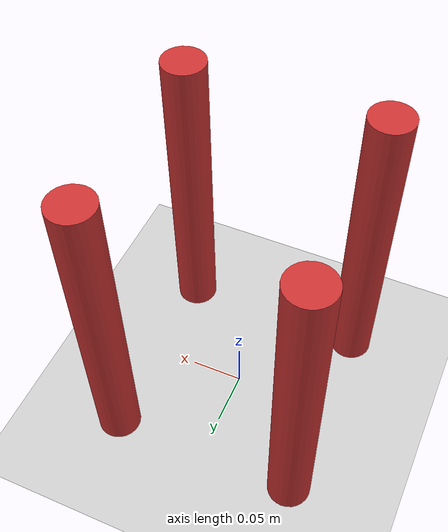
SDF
<sdf version="1.9">
 <world name="drone_world">
  <physics name="1ms" type="ignored">
   <max_step_size>0.0002</max_step_size>
   <real_time_factor>1.0</real_time_factor>
   <real_time_update_rate>5000</real_time_update_rate>
  </physics>
  <plugin filename="gz-sim-physics-system" name="gz::sim::systems::Physics"/>
  <plugin filename="gz-sim-scene-broadcaster-system" name="gz::sim::systems::SceneBroadcaster"/>
  <plugin filename="gz-sim-sensors-system" name="gz::sim::systems::Sensors"/>
  <plugin filename="gz-sim-imu-system" name="gz::sim::systems::Imu"/>
  <plugin filename="gz-sim-user-commands-system" name="gz::sim::systems::UserCommands"/>
  <light type="directional" name="sun">
   <pose>0 0 10 0 0 0</pose>
   <diffuse>0.8 0.8 0.8 1</diffuse>
   <specular>0.2 0.2 0.2 1</specular>
   <attenuation>
    <range>1000</range>
    <constant>0.9</constant>
    <linear>0.01</linear>
    <quadratic>0.001</quadratic>
   </attenuation>
   <direction>-0.5 0.1 -0.9</direction>
  </light>
  <model name="ground_plane">
   <static>true</static>
   <link name="link">
    <collision name="collision">
     <geometry><plane><normal>0 0 1</normal><size>100 100</size></plane></geometry>
    </collision>
    <visual name="visual">
     <geometry><plane><normal>0 0 1</normal><size>100 100</size></plane></geometry>
     <material>
      <ambient>0.8 0.8 0.8 1</ambient>
      <diffuse>0.8 0.8 0.8 1</diffuse>
      <specular>0.8 0.8 0.8 1</specular>
     </material>
    </visual>
   </link>
  </model>
  <model name="launchpad">
   <static>true</static>
   <link name="base_link">
    <collision name="col_fr">
     <pose>0.088388 -0.088388 0.15 0 0 0</pose>
     <geometry><cylinder><radius>0.02</radius><length>0.3</length></cylinder></geometry>
    </collision>
    <visual name="vis_fr">
     <pose>0.088388 -0.088388 0.15 0 0 0</pose>
     <geometry><cylinder><radius>0.02</radius><length>0.3</length></cylinder></geometry>
     <material><ambient>0.8 0.2 0.2 1</ambient><diffuse>0.8 0.2 0.2 1</diffuse></material>
    </visual>
    <collision name="col_fl">
     <pose>0.088388 0.088388 0.15 0 0 0</pose>
     <geometry><cylinder><radius>0.02</radius><length>0.3</length></cylinder></geometry>
    </collision>
    <visual name="vis_fl">
     <pose>0.088388 0.088388 0.15 0 0 0</pose>
     <geometry><cylinder><radius>0.02</radius><length>0.3</length></cylinder></geometry>
     <material><ambient>0.8 0.2 0.2 1</ambient><diffuse>0.8 0.2 0.2 1</diffuse></material>
    </visual>
    <collision name="col_br">
     <pose>-0.088388 -0.088388 0.15 0 0 0</pose>
     <geometry><cylinder><radius>0.02</radius><length>0.3</length></cylinder></geometry>
    </collision>
    <visual name="vis_br">
     <pose>-0.088388 -0.088388 0.15 0 0 0</pose>
     <geometry><cylinder><radius>0.02</radius><length>0.3</length></cylinder></geometry>
     <material><ambient>0.8 0.2 0.2 1</ambient><diffuse>0.8 0.2 0.2 1</diffuse></material>
    </visual>
    <collision name="col_bl">
     <pose>-0.088388 0.088388 0.15 0 0 0</pose>
     <geometry><cylinder><radius>0.02</radius><length>0.3</length></cylinder></geometry>
    </collision>
    <visual name="vis_bl">
     <pose>-0.088388 0.088388 0.15 0 0 0</pose>
     <geometry><cylinder><radius>0.02</radius><length>0.3</length></cylinder></geometry>
     <material><ambient>0.8 0.2 0.2 1</ambient><diffuse>0.8 0.2 0.2 1</diffuse></material>
    </visual>
   </link>
  </model>
 </world>
</sdf>
